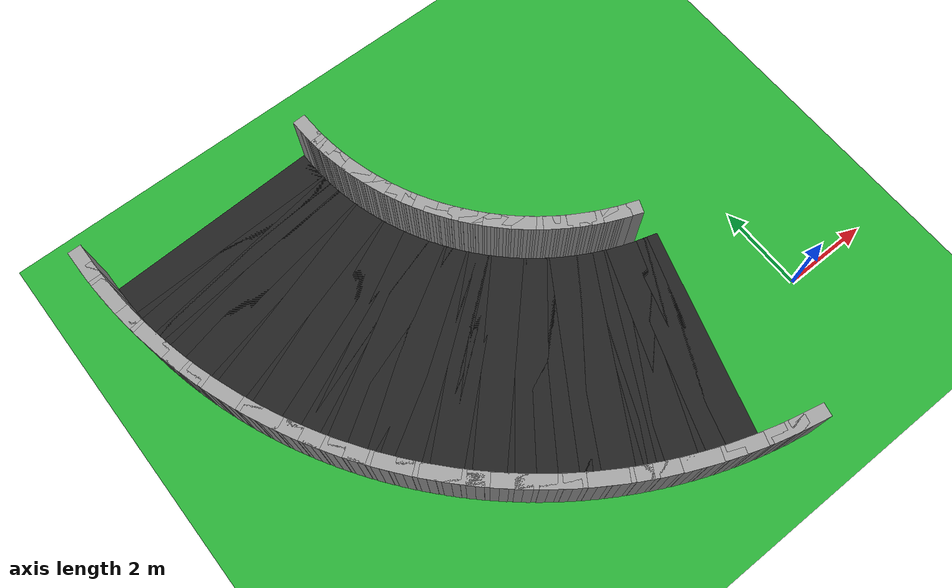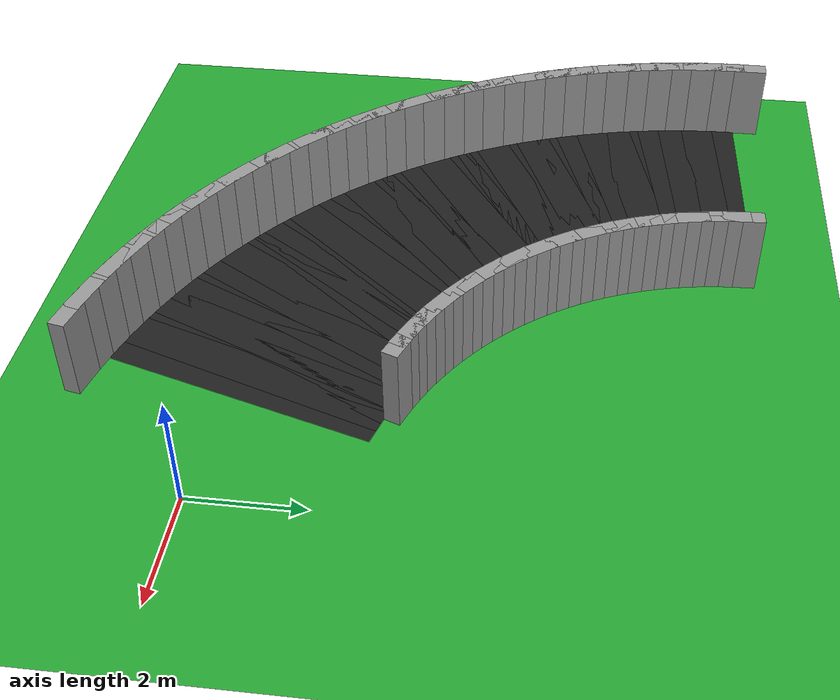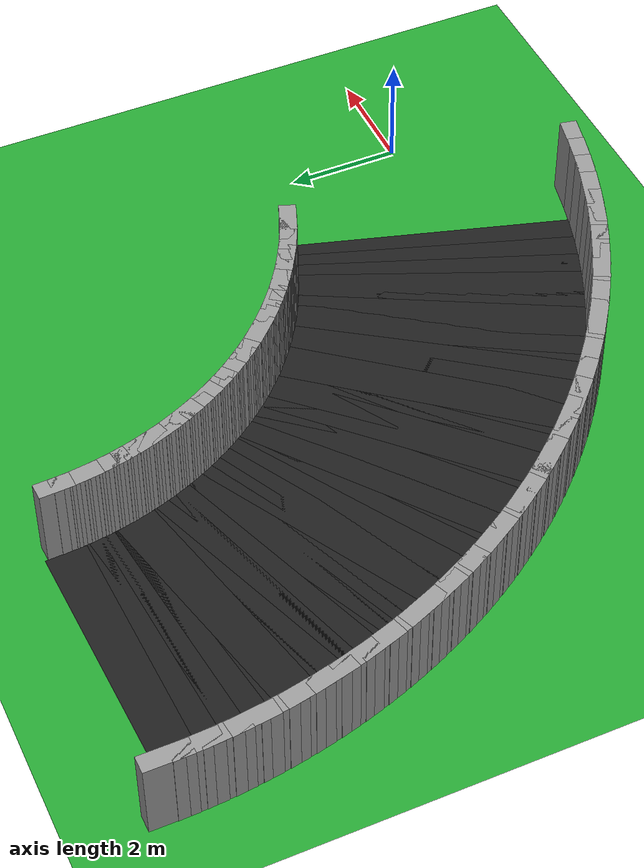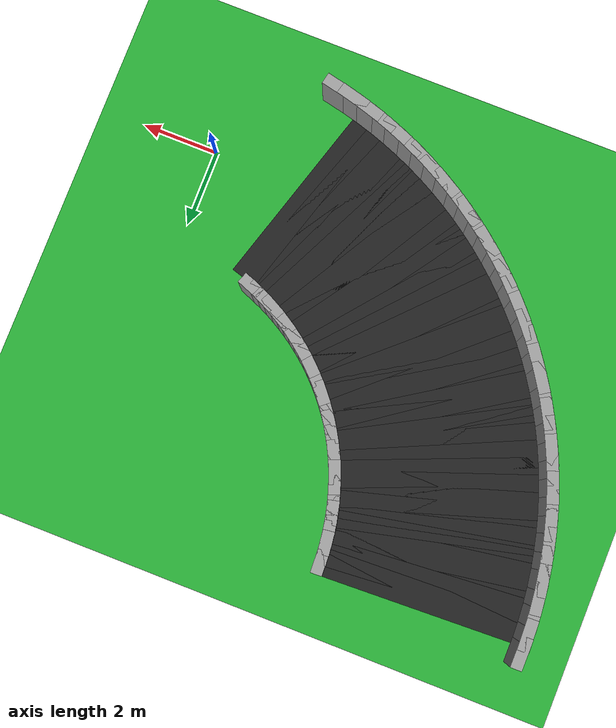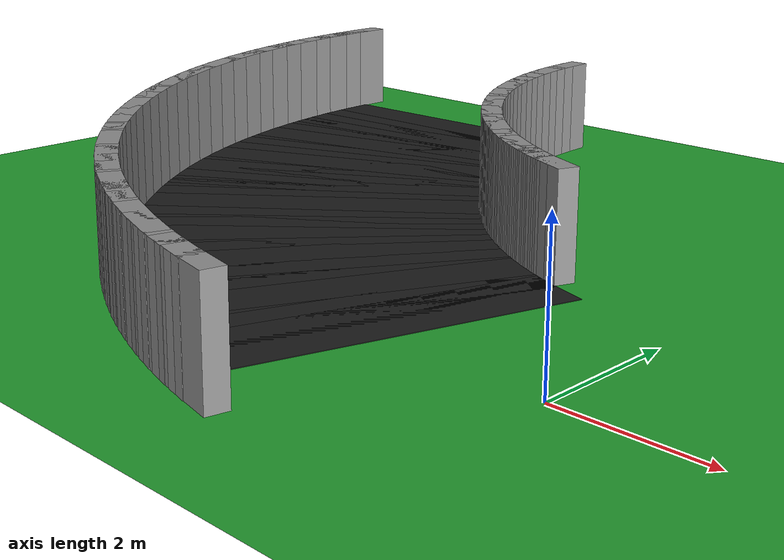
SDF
<sdf version="1.6">
 <world name="loop_stadium">
  <include><uri>model://sun</uri></include>
  <model name="ground_plane">
   <static>true</static>
   <link name="link">
    <collision name="collision">
     <surface><friction><ode><mu>100</mu><mu2>50</mu2></ode></friction></surface>
     <geometry><plane><normal>0 0 1</normal><size>120 120</size></plane></geometry>
    </collision>
    <visual name="visual">
     <geometry><plane><normal>0 0 1</normal><size>120 120</size></plane></geometry>
     <material>
      <script><uri>file://media/materials/scripts/gazebo.material</uri><name>Gazebo/Green</name></script>
     </material>
    </visual>
   </link>
  </model>
  <model name="curbR_259">
   <static>true</static>
   <pose>-11.648 9.001 0.750 0 0 -1.57080</pose>
   <link name="link">
    <collision name="collision"><geometry><box><size>0.812 0.300 1.500</size></box></geometry></collision>
    <visual name="visual">
     <geometry><box><size>0.812 0.300 1.500</size></box></geometry>
     <material>
      <script><uri>file://media/materials/scripts/gazebo.material</uri><name>Gazebo/Grey</name></script>
     </material>
    </visual>
   </link>
  </model>
  <model name="asphalt_260">
   <static>true</static>
   <pose>-8.992 8.652 0.005 0 0 -1.53201</pose>
   <link name="link">
    <visual name="visual">
     <geometry><box><size>0.709 5.000 0.010</size></box></geometry>
     <material>
      <script><uri>file://media/materials/scripts/gazebo.material</uri><name>Gazebo/Black</name></script>
     </material>
    </visual>
   </link>
  </model>
  <model name="curbL_260">
   <static>true</static>
   <pose>-6.345 8.754 0.750 0 0 -1.53201</pose>
   <link name="link">
    <collision name="collision"><geometry><box><size>0.606 0.300 1.500</size></box></geometry></collision>
    <visual name="visual">
     <geometry><box><size>0.606 0.300 1.500</size></box></geometry>
     <material>
      <script><uri>file://media/materials/scripts/gazebo.material</uri><name>Gazebo/Grey</name></script>
     </material>
    </visual>
   </link>
  </model>
  <model name="curbR_260">
   <static>true</static>
   <pose>-11.640 8.549 0.750 0 0 -1.53201</pose>
   <link name="link">
    <collision name="collision"><geometry><box><size>0.812 0.300 1.500</size></box></geometry></collision>
    <visual name="visual">
     <geometry><box><size>0.812 0.300 1.500</size></box></geometry>
     <material>
      <script><uri>file://media/materials/scripts/gazebo.material</uri><name>Gazebo/Grey</name></script>
     </material>
    </visual>
   </link>
  </model>
  <model name="asphalt_261">
   <static>true</static>
   <pose>-8.972 8.303 0.005 0 0 -1.49323</pose>
   <link name="link">
    <visual name="visual">
     <geometry><box><size>0.709 5.000 0.010</size></box></geometry>
     <material>
      <script><uri>file://media/materials/scripts/gazebo.material</uri><name>Gazebo/Black</name></script>
     </material>
    </visual>
   </link>
  </model>
  <model name="curbL_261">
   <static>true</static>
   <pose>-6.330 8.509 0.750 0 0 -1.49323</pose>
   <link name="link">
    <collision name="collision"><geometry><box><size>0.606 0.300 1.500</size></box></geometry></collision>
    <visual name="visual">
     <geometry><box><size>0.606 0.300 1.500</size></box></geometry>
     <material>
      <script><uri>file://media/materials/scripts/gazebo.material</uri><name>Gazebo/Grey</name></script>
     </material>
    </visual>
   </link>
  </model>
  <model name="curbR_261">
   <static>true</static>
   <pose>-11.613 8.098 0.750 0 0 -1.49323</pose>
   <link name="link">
    <collision name="collision"><geometry><box><size>0.812 0.300 1.500</size></box></geometry></collision>
    <visual name="visual">
     <geometry><box><size>0.812 0.300 1.500</size></box></geometry>
     <material>
      <script><uri>file://media/materials/scripts/gazebo.material</uri><name>Gazebo/Grey</name></script>
     </material>
    </visual>
   </link>
  </model>
  <model name="asphalt_262">
   <static>true</static>
   <pose>-8.938 7.956 0.005 0 0 -1.45444</pose>
   <link name="link">
    <visual name="visual">
     <geometry><box><size>0.709 5.000 0.010</size></box></geometry>
     <material>
      <script><uri>file://media/materials/scripts/gazebo.material</uri><name>Gazebo/Black</name></script>
     </material>
    </visual>
   </link>
  </model>
  <model name="curbL_262">
   <static>true</static>
   <pose>-6.306 8.263 0.750 0 0 -1.45444</pose>
   <link name="link">
    <collision name="collision"><geometry><box><size>0.606 0.300 1.500</size></box></geometry></collision>
    <visual name="visual">
     <geometry><box><size>0.606 0.300 1.500</size></box></geometry>
     <material>
      <script><uri>file://media/materials/scripts/gazebo.material</uri><name>Gazebo/Grey</name></script>
     </material>
    </visual>
   </link>
  </model>
  <model name="curbR_262">
   <static>true</static>
   <pose>-11.570 7.648 0.750 0 0 -1.45444</pose>
   <link name="link">
    <collision name="collision"><geometry><box><size>0.812 0.300 1.500</size></box></geometry></collision>
    <visual name="visual">
     <geometry><box><size>0.812 0.300 1.500</size></box></geometry>
     <material>
      <script><uri>file://media/materials/scripts/gazebo.material</uri><name>Gazebo/Grey</name></script>
     </material>
    </visual>
   </link>
  </model>
  <model name="asphalt_263">
   <static>true</static>
   <pose>-8.891 7.610 0.005 0 0 -1.41566</pose>
   <link name="link">
    <visual name="visual">
     <geometry><box><size>0.709 5.000 0.010</size></box></geometry>
     <material>
      <script><uri>file://media/materials/scripts/gazebo.material</uri><name>Gazebo/Black</name></script>
     </material>
    </visual>
   </link>
  </model>
  <model name="curbL_263">
   <static>true</static>
   <pose>-6.273 8.019 0.750 0 0 -1.41566</pose>
   <link name="link">
    <collision name="collision"><geometry><box><size>0.606 0.300 1.500</size></box></geometry></collision>
    <visual name="visual">
     <geometry><box><size>0.606 0.300 1.500</size></box></geometry>
     <material>
      <script><uri>file://media/materials/scripts/gazebo.material</uri><name>Gazebo/Grey</name></script>
     </material>
    </visual>
   </link>
  </model>
  <model name="curbR_263">
   <static>true</static>
   <pose>-11.508 7.201 0.750 0 0 -1.41566</pose>
   <link name="link">
    <collision name="collision"><geometry><box><size>0.812 0.300 1.500</size></box></geometry></collision>
    <visual name="visual">
     <geometry><box><size>0.812 0.300 1.500</size></box></geometry>
     <material>
      <script><uri>file://media/materials/scripts/gazebo.material</uri><name>Gazebo/Grey</name></script>
     </material>
    </visual>
   </link>
  </model>
  <model name="asphalt_264">
   <static>true</static>
   <pose>-8.830 7.266 0.005 0 0 -1.37687</pose>
   <link name="link">
    <visual name="visual">
     <geometry><box><size>0.709 5.000 0.010</size></box></geometry>
     <material>
      <script><uri>file://media/materials/scripts/gazebo.material</uri><name>Gazebo/Black</name></script>
     </material>
    </visual>
   </link>
  </model>
  <model name="curbL_264">
   <static>true</static>
   <pose>-6.230 7.777 0.750 0 0 -1.37687</pose>
   <link name="link">
    <collision name="collision"><geometry><box><size>0.606 0.300 1.500</size></box></geometry></collision>
    <visual name="visual">
     <geometry><box><size>0.606 0.300 1.500</size></box></geometry>
     <material>
      <script><uri>file://media/materials/scripts/gazebo.material</uri><name>Gazebo/Grey</name></script>
     </material>
    </visual>
   </link>
  </model>
  <model name="curbR_264">
   <static>true</static>
   <pose>-11.430 6.756 0.750 0 0 -1.37687</pose>
   <link name="link">
    <collision name="collision"><geometry><box><size>0.812 0.300 1.500</size></box></geometry></collision>
    <visual name="visual">
     <geometry><box><size>0.812 0.300 1.500</size></box></geometry>
     <material>
      <script><uri>file://media/materials/scripts/gazebo.material</uri><name>Gazebo/Grey</name></script>
     </material>
    </visual>
   </link>
  </model>
  <model name="asphalt_265">
   <static>true</static>
   <pose>-8.756 6.925 0.005 0 0 -1.33809</pose>
   <link name="link">
    <visual name="visual">
     <geometry><box><size>0.709 5.000 0.010</size></box></geometry>
     <material>
      <script><uri>file://media/materials/scripts/gazebo.material</uri><name>Gazebo/Black</name></script>
     </material>
    </visual>
   </link>
  </model>
  <model name="curbL_265">
   <static>true</static>
   <pose>-6.178 7.536 0.750 0 0 -1.33809</pose>
   <link name="link">
    <collision name="collision"><geometry><box><size>0.606 0.300 1.500</size></box></geometry></collision>
    <visual name="visual">
     <geometry><box><size>0.606 0.300 1.500</size></box></geometry>
     <material>
      <script><uri>file://media/materials/scripts/gazebo.material</uri><name>Gazebo/Grey</name></script>
     </material>
    </visual>
   </link>
  </model>
  <model name="curbR_265">
   <static>true</static>
   <pose>-11.334 6.314 0.750 0 0 -1.33809</pose>
   <link name="link">
    <collision name="collision"><geometry><box><size>0.812 0.300 1.500</size></box></geometry></collision>
    <visual name="visual">
     <geometry><box><size>0.812 0.300 1.500</size></box></geometry>
     <material>
      <script><uri>file://media/materials/scripts/gazebo.material</uri><name>Gazebo/Grey</name></script>
     </material>
    </visual>
   </link>
  </model>
  <model name="asphalt_266">
   <static>true</static>
   <pose>-8.669 6.587 0.005 0 0 -1.29930</pose>
   <link name="link">
    <visual name="visual">
     <geometry><box><size>0.709 5.000 0.010</size></box></geometry>
     <material>
      <script><uri>file://media/materials/scripts/gazebo.material</uri><name>Gazebo/Black</name></script>
     </material>
    </visual>
   </link>
  </model>
  <model name="curbL_266">
   <static>true</static>
   <pose>-6.117 7.298 0.750 0 0 -1.29930</pose>
   <link name="link">
    <collision name="collision"><geometry><box><size>0.606 0.300 1.500</size></box></geometry></collision>
    <visual name="visual">
     <geometry><box><size>0.606 0.300 1.500</size></box></geometry>
     <material>
      <script><uri>file://media/materials/scripts/gazebo.material</uri><name>Gazebo/Grey</name></script>
     </material>
    </visual>
   </link>
  </model>
  <model name="curbR_266">
   <static>true</static>
   <pose>-11.222 5.877 0.750 0 0 -1.29930</pose>
   <link name="link">
    <collision name="collision"><geometry><box><size>0.812 0.300 1.500</size></box></geometry></collision>
    <visual name="visual">
     <geometry><box><size>0.812 0.300 1.500</size></box></geometry>
     <material>
      <script><uri>file://media/materials/scripts/gazebo.material</uri><name>Gazebo/Grey</name></script>
     </material>
    </visual>
   </link>
  </model>
  <model name="asphalt_267">
   <static>true</static>
   <pose>-8.569 6.253 0.005 0 0 -1.26052</pose>
   <link name="link">
    <visual name="visual">
     <geometry><box><size>0.709 5.000 0.010</size></box></geometry>
     <material>
      <script><uri>file://media/materials/scripts/gazebo.material</uri><name>Gazebo/Black</name></script>
     </material>
    </visual>
   </link>
  </model>
  <model name="curbL_267">
   <static>true</static>
   <pose>-6.046 7.062 0.750 0 0 -1.26052</pose>
   <link name="link">
    <collision name="collision"><geometry><box><size>0.606 0.300 1.500</size></box></geometry></collision>
    <visual name="visual">
     <geometry><box><size>0.606 0.300 1.500</size></box></geometry>
     <material>
      <script><uri>file://media/materials/scripts/gazebo.material</uri><name>Gazebo/Grey</name></script>
     </material>
    </visual>
   </link>
  </model>
  <model name="curbR_267">
   <static>true</static>
   <pose>-11.092 5.444 0.750 0 0 -1.26052</pose>
   <link name="link">
    <collision name="collision"><geometry><box><size>0.812 0.300 1.500</size></box></geometry></collision>
    <visual name="visual">
     <geometry><box><size>0.812 0.300 1.500</size></box></geometry>
     <material>
      <script><uri>file://media/materials/scripts/gazebo.material</uri><name>Gazebo/Grey</name></script>
     </material>
    </visual>
   </link>
  </model>
  <model name="asphalt_268">
   <static>true</static>
   <pose>-8.456 5.923 0.005 0 0 -1.22173</pose>
   <link name="link">
    <visual name="visual">
     <geometry><box><size>0.709 5.000 0.010</size></box></geometry>
     <material>
      <script><uri>file://media/materials/scripts/gazebo.material</uri><name>Gazebo/Black</name></script>
     </material>
    </visual>
   </link>
  </model>
  <model name="curbL_268">
   <static>true</static>
   <pose>-5.966 6.829 0.750 0 0 -1.22173</pose>
   <link name="link">
    <collision name="collision"><geometry><box><size>0.606 0.300 1.500</size></box></geometry></collision>
    <visual name="visual">
     <geometry><box><size>0.606 0.300 1.500</size></box></geometry>
     <material>
      <script><uri>file://media/materials/scripts/gazebo.material</uri><name>Gazebo/Grey</name></script>
     </material>
    </visual>
   </link>
  </model>
  <model name="curbR_268">
   <static>true</static>
   <pose>-10.946 5.017 0.750 0 0 -1.22173</pose>
   <link name="link">
    <collision name="collision"><geometry><box><size>0.812 0.300 1.500</size></box></geometry></collision>
    <visual name="visual">
     <geometry><box><size>0.812 0.300 1.500</size></box></geometry>
     <material>
      <script><uri>file://media/materials/scripts/gazebo.material</uri><name>Gazebo/Grey</name></script>
     </material>
    </visual>
   </link>
  </model>
  <model name="asphalt_269">
   <static>true</static>
   <pose>-8.330 5.597 0.005 0 0 -1.18295</pose>
   <link name="link">
    <visual name="visual">
     <geometry><box><size>0.709 5.000 0.010</size></box></geometry>
     <material>
      <script><uri>file://media/materials/scripts/gazebo.material</uri><name>Gazebo/Black</name></script>
     </material>
    </visual>
   </link>
  </model>
  <model name="curbL_269">
   <static>true</static>
   <pose>-5.878 6.599 0.750 0 0 -1.18295</pose>
   <link name="link">
    <collision name="collision"><geometry><box><size>0.606 0.300 1.500</size></box></geometry></collision>
    <visual name="visual">
     <geometry><box><size>0.606 0.300 1.500</size></box></geometry>
     <material>
      <script><uri>file://media/materials/scripts/gazebo.material</uri><name>Gazebo/Grey</name></script>
     </material>
    </visual>
   </link>
  </model>
  <model name="curbR_269">
   <static>true</static>
   <pose>-10.783 4.595 0.750 0 0 -1.18295</pose>
   <link name="link">
    <collision name="collision"><geometry><box><size>0.812 0.300 1.500</size></box></geometry></collision>
    <visual name="visual">
     <geometry><box><size>0.812 0.300 1.500</size></box></geometry>
     <material>
      <script><uri>file://media/materials/scripts/gazebo.material</uri><name>Gazebo/Grey</name></script>
     </material>
    </visual>
   </link>
  </model>
  <model name="asphalt_270">
   <static>true</static>
   <pose>-8.192 5.277 0.005 0 0 -1.14416</pose>
   <link name="link">
    <visual name="visual">
     <geometry><box><size>0.709 5.000 0.010</size></box></geometry>
     <material>
      <script><uri>file://media/materials/scripts/gazebo.material</uri><name>Gazebo/Black</name></script>
     </material>
    </visual>
   </link>
  </model>
  <model name="curbL_270">
   <static>true</static>
   <pose>-5.780 6.373 0.750 0 0 -1.14416</pose>
   <link name="link">
    <collision name="collision"><geometry><box><size>0.606 0.300 1.500</size></box></geometry></collision>
    <visual name="visual">
     <geometry><box><size>0.606 0.300 1.500</size></box></geometry>
     <material>
      <script><uri>file://media/materials/scripts/gazebo.material</uri><name>Gazebo/Grey</name></script>
     </material>
    </visual>
   </link>
  </model>
  <model name="curbR_270">
   <static>true</static>
   <pose>-10.604 4.180 0.750 0 0 -1.14416</pose>
   <link name="link">
    <collision name="collision"><geometry><box><size>0.812 0.300 1.500</size></box></geometry></collision>
    <visual name="visual">
     <geometry><box><size>0.812 0.300 1.500</size></box></geometry>
     <material>
      <script><uri>file://media/materials/scripts/gazebo.material</uri><name>Gazebo/Grey</name></script>
     </material>
    </visual>
   </link>
  </model>
  <model name="asphalt_271">
   <static>true</static>
   <pose>-8.042 4.962 0.005 0 0 -1.10538</pose>
   <link name="link">
    <visual name="visual">
     <geometry><box><size>0.709 5.000 0.010</size></box></geometry>
     <material>
      <script><uri>file://media/materials/scripts/gazebo.material</uri><name>Gazebo/Black</name></script>
     </material>
    </visual>
   </link>
  </model>
  <model name="curbL_271">
   <static>true</static>
   <pose>-5.674 6.151 0.750 0 0 -1.10538</pose>
   <link name="link">
    <collision name="collision"><geometry><box><size>0.606 0.300 1.500</size></box></geometry></collision>
    <visual name="visual">
     <geometry><box><size>0.606 0.300 1.500</size></box></geometry>
     <material>
      <script><uri>file://media/materials/scripts/gazebo.material</uri><name>Gazebo/Grey</name></script>
     </material>
    </visual>
   </link>
  </model>
  <model name="curbR_271">
   <static>true</static>
   <pose>-10.409 3.773 0.750 0 0 -1.10538</pose>
   <link name="link">
    <collision name="collision"><geometry><box><size>0.812 0.300 1.500</size></box></geometry></collision>
    <visual name="visual">
     <geometry><box><size>0.812 0.300 1.500</size></box></geometry>
     <material>
      <script><uri>file://media/materials/scripts/gazebo.material</uri><name>Gazebo/Grey</name></script>
     </material>
    </visual>
   </link>
  </model>
  <model name="asphalt_272">
   <static>true</static>
   <pose>-7.879 4.653 0.005 0 0 -1.06659</pose>
   <link name="link">
    <visual name="visual">
     <geometry><box><size>0.709 5.000 0.010</size></box></geometry>
     <material>
      <script><uri>file://media/materials/scripts/gazebo.material</uri><name>Gazebo/Black</name></script>
     </material>
    </visual>
   </link>
  </model>
  <model name="curbL_272">
   <static>true</static>
   <pose>-5.559 5.933 0.750 0 0 -1.06659</pose>
   <link name="link">
    <collision name="collision"><geometry><box><size>0.606 0.300 1.500</size></box></geometry></collision>
    <visual name="visual">
     <geometry><box><size>0.606 0.300 1.500</size></box></geometry>
     <material>
      <script><uri>file://media/materials/scripts/gazebo.material</uri><name>Gazebo/Grey</name></script>
     </material>
    </visual>
   </link>
  </model>
  <model name="curbR_272">
   <static>true</static>
   <pose>-10.199 3.373 0.750 0 0 -1.06659</pose>
   <link name="link">
    <collision name="collision"><geometry><box><size>0.812 0.300 1.500</size></box></geometry></collision>
    <visual name="visual">
     <geometry><box><size>0.812 0.300 1.500</size></box></geometry>
     <material>
      <script><uri>file://media/materials/scripts/gazebo.material</uri><name>Gazebo/Grey</name></script>
     </material>
    </visual>
   </link>
  </model>
  <model name="asphalt_273">
   <static>true</static>
   <pose>-7.705 4.351 0.005 0 0 -1.02781</pose>
   <link name="link">
    <visual name="visual">
     <geometry><box><size>0.709 5.000 0.010</size></box></geometry>
     <material>
      <script><uri>file://media/materials/scripts/gazebo.material</uri><name>Gazebo/Black</name></script>
     </material>
    </visual>
   </link>
  </model>
  <model name="curbL_273">
   <static>true</static>
   <pose>-5.436 5.720 0.750 0 0 -1.02781</pose>
   <link name="link">
    <collision name="collision"><geometry><box><size>0.606 0.300 1.500</size></box></geometry></collision>
    <visual name="visual">
     <geometry><box><size>0.606 0.300 1.500</size></box></geometry>
     <material>
      <script><uri>file://media/materials/scripts/gazebo.material</uri><name>Gazebo/Grey</name></script>
     </material>
    </visual>
   </link>
  </model>
  <model name="curbR_273">
   <static>true</static>
   <pose>-9.973 2.982 0.750 0 0 -1.02781</pose>
   <link name="link">
    <collision name="collision"><geometry><box><size>0.812 0.300 1.500</size></box></geometry></collision>
    <visual name="visual">
     <geometry><box><size>0.812 0.300 1.500</size></box></geometry>
     <material>
      <script><uri>file://media/materials/scripts/gazebo.material</uri><name>Gazebo/Grey</name></script>
     </material>
    </visual>
   </link>
  </model>
  <model name="asphalt_274">
   <static>true</static>
   <pose>-7.518 4.056 0.005 0 0 -0.98902</pose>
   <link name="link">
    <visual name="visual">
     <geometry><box><size>0.709 5.000 0.010</size></box></geometry>
     <material>
      <script><uri>file://media/materials/scripts/gazebo.material</uri><name>Gazebo/Black</name></script>
     </material>
    </visual>
   </link>
  </model>
  <model name="curbL_274">
   <static>true</static>
   <pose>-5.305 5.512 0.750 0 0 -0.98902</pose>
   <link name="link">
    <collision name="collision"><geometry><box><size>0.606 0.300 1.500</size></box></geometry></collision>
    <visual name="visual">
     <geometry><box><size>0.606 0.300 1.500</size></box></geometry>
     <material>
      <script><uri>file://media/materials/scripts/gazebo.material</uri><name>Gazebo/Grey</name></script>
     </material>
    </visual>
   </link>
  </model>
  <model name="curbR_274">
   <static>true</static>
   <pose>-9.732 2.600 0.750 0 0 -0.98902</pose>
   <link name="link">
    <collision name="collision"><geometry><box><size>0.812 0.300 1.500</size></box></geometry></collision>
    <visual name="visual">
     <geometry><box><size>0.812 0.300 1.500</size></box></geometry>
     <material>
      <script><uri>file://media/materials/scripts/gazebo.material</uri><name>Gazebo/Grey</name></script>
     </material>
    </visual>
   </link>
  </model>
  <model name="asphalt_275">
   <static>true</static>
   <pose>-7.321 3.768 0.005 0 0 -0.95023</pose>
   <link name="link">
    <visual name="visual">
     <geometry><box><size>0.709 5.000 0.010</size></box></geometry>
     <material>
      <script><uri>file://media/materials/scripts/gazebo.material</uri><name>Gazebo/Black</name></script>
     </material>
    </visual>
   </link>
  </model>
  <model name="curbL_275">
   <static>true</static>
   <pose>-5.166 5.308 0.750 0 0 -0.95023</pose>
   <link name="link">
    <collision name="collision"><geometry><box><size>0.606 0.300 1.500</size></box></geometry></collision>
    <visual name="visual">
     <geometry><box><size>0.606 0.300 1.500</size></box></geometry>
     <material>
      <script><uri>file://media/materials/scripts/gazebo.material</uri><name>Gazebo/Grey</name></script>
     </material>
    </visual>
   </link>
  </model>
  <model name="curbR_275">
   <static>true</static>
   <pose>-9.477 2.227 0.750 0 0 -0.95023</pose>
   <link name="link">
    <collision name="collision"><geometry><box><size>0.812 0.300 1.500</size></box></geometry></collision>
    <visual name="visual">
     <geometry><box><size>0.812 0.300 1.500</size></box></geometry>
     <material>
      <script><uri>file://media/materials/scripts/gazebo.material</uri><name>Gazebo/Grey</name></script>
     </material>
    </visual>
   </link>
  </model>
  <model name="asphalt_276">
   <static>true</static>
   <pose>-7.113 3.488 0.005 0 0 -0.91145</pose>
   <link name="link">
    <visual name="visual">
     <geometry><box><size>0.709 5.000 0.010</size></box></geometry>
     <material>
      <script><uri>file://media/materials/scripts/gazebo.material</uri><name>Gazebo/Black</name></script>
     </material>
    </visual>
   </link>
  </model>
  <model name="curbL_276">
   <static>true</static>
   <pose>-5.018 5.111 0.750 0 0 -0.91145</pose>
   <link name="link">
    <collision name="collision"><geometry><box><size>0.606 0.300 1.500</size></box></geometry></collision>
    <visual name="visual">
     <geometry><box><size>0.606 0.300 1.500</size></box></geometry>
     <material>
      <script><uri>file://media/materials/scripts/gazebo.material</uri><name>Gazebo/Grey</name></script>
     </material>
    </visual>
   </link>
  </model>
  <model name="curbR_276">
   <static>true</static>
   <pose>-9.207 1.865 0.750 0 0 -0.91145</pose>
   <link name="link">
    <collision name="collision"><geometry><box><size>0.812 0.300 1.500</size></box></geometry></collision>
    <visual name="visual">
     <geometry><box><size>0.812 0.300 1.500</size></box></geometry>
     <material>
      <script><uri>file://media/materials/scripts/gazebo.material</uri><name>Gazebo/Grey</name></script>
     </material>
    </visual>
   </link>
  </model>
  <model name="asphalt_277">
   <static>true</static>
   <pose>-6.894 3.216 0.005 0 0 -0.87266</pose>
   <link name="link">
    <visual name="visual">
     <geometry><box><size>0.709 5.000 0.010</size></box></geometry>
     <material>
      <script><uri>file://media/materials/scripts/gazebo.material</uri><name>Gazebo/Black</name></script>
     </material>
    </visual>
   </link>
  </model>
  <model name="curbL_277">
   <static>true</static>
   <pose>-4.864 4.919 0.750 0 0 -0.87266</pose>
   <link name="link">
    <collision name="collision"><geometry><box><size>0.606 0.300 1.500</size></box></geometry></collision>
    <visual name="visual">
     <geometry><box><size>0.606 0.300 1.500</size></box></geometry>
     <material>
      <script><uri>file://media/materials/scripts/gazebo.material</uri><name>Gazebo/Grey</name></script>
     </material>
    </visual>
   </link>
  </model>
  <model name="curbR_277">
   <static>true</static>
   <pose>-8.923 1.513 0.750 0 0 -0.87266</pose>
   <link name="link">
    <collision name="collision"><geometry><box><size>0.812 0.300 1.500</size></box></geometry></collision>
    <visual name="visual">
     <geometry><box><size>0.812 0.300 1.500</size></box></geometry>
     <material>
      <script><uri>file://media/materials/scripts/gazebo.material</uri><name>Gazebo/Grey</name></script>
     </material>
    </visual>
   </link>
  </model>
  <model name="asphalt_278">
   <static>true</static>
   <pose>-6.664 2.953 0.005 0 0 -0.83388</pose>
   <link name="link">
    <visual name="visual">
     <geometry><box><size>0.709 5.000 0.010</size></box></geometry>
     <material>
      <script><uri>file://media/materials/scripts/gazebo.material</uri><name>Gazebo/Black</name></script>
     </material>
    </visual>
   </link>
  </model>
  <model name="curbL_278">
   <static>true</static>
   <pose>-4.702 4.734 0.750 0 0 -0.83388</pose>
   <link name="link">
    <collision name="collision"><geometry><box><size>0.606 0.300 1.500</size></box></geometry></collision>
    <visual name="visual">
     <geometry><box><size>0.606 0.300 1.500</size></box></geometry>
     <material>
      <script><uri>file://media/materials/scripts/gazebo.material</uri><name>Gazebo/Grey</name></script>
     </material>
    </visual>
   </link>
  </model>
  <model name="curbR_278">
   <static>true</static>
   <pose>-8.626 1.173 0.750 0 0 -0.83388</pose>
   <link name="link">
    <collision name="collision"><geometry><box><size>0.812 0.300 1.500</size></box></geometry></collision>
    <visual name="visual">
     <geometry><box><size>0.812 0.300 1.500</size></box></geometry>
     <material>
      <script><uri>file://media/materials/scripts/gazebo.material</uri><name>Gazebo/Grey</name></script>
     </material>
    </visual>
   </link>
  </model>
  <model name="asphalt_279">
   <static>true</static>
   <pose>-6.425 2.699 0.005 0 0 -0.79509</pose>
   <link name="link">
    <visual name="visual">
     <geometry><box><size>0.709 5.000 0.010</size></box></geometry>
     <material>
      <script><uri>file://media/materials/scripts/gazebo.material</uri><name>Gazebo/Black</name></script>
     </material>
    </visual>
   </link>
  </model>
  <model name="curbL_279">
   <static>true</static>
   <pose>-4.533 4.555 0.750 0 0 -0.79509</pose>
   <link name="link">
    <collision name="collision"><geometry><box><size>0.606 0.300 1.500</size></box></geometry></collision>
    <visual name="visual">
     <geometry><box><size>0.606 0.300 1.500</size></box></geometry>
     <material>
      <script><uri>file://media/materials/scripts/gazebo.material</uri><name>Gazebo/Grey</name></script>
     </material>
    </visual>
   </link>
  </model>
  <model name="curbR_279">
   <static>true</static>
   <pose>-8.316 0.844 0.750 0 0 -0.79509</pose>
   <link name="link">
    <collision name="collision"><geometry><box><size>0.812 0.300 1.500</size></box></geometry></collision>
    <visual name="visual">
     <geometry><box><size>0.812 0.300 1.500</size></box></geometry>
     <material>
      <script><uri>file://media/materials/scripts/gazebo.material</uri><name>Gazebo/Grey</name></script>
     </material>
    </visual>
   </link>
  </model>
  <model name="asphalt_280">
   <static>true</static>
   <pose>-6.175 2.455 0.005 0 0 -0.75631</pose>
   <link name="link">
    <visual name="visual">
     <geometry><box><size>0.709 5.000 0.010</size></box></geometry>
     <material>
      <script><uri>file://media/materials/scripts/gazebo.material</uri><name>Gazebo/Black</name></script>
     </material>
    </visual>
   </link>
  </model>
  <model name="curbL_280">
   <static>true</static>
   <pose>-4.357 4.382 0.750 0 0 -0.75631</pose>
   <link name="link">
    <collision name="collision"><geometry><box><size>0.606 0.300 1.500</size></box></geometry></collision>
    <visual name="visual">
     <geometry><box><size>0.606 0.300 1.500</size></box></geometry>
     <material>
      <script><uri>file://media/materials/scripts/gazebo.material</uri><name>Gazebo/Grey</name></script>
     </material>
    </visual>
   </link>
  </model>
  <model name="curbR_280">
   <static>true</static>
   <pose>-7.994 0.528 0.750 0 0 -0.75631</pose>
   <link name="link">
    <collision name="collision"><geometry><box><size>0.812 0.300 1.500</size></box></geometry></collision>
    <visual name="visual">
     <geometry><box><size>0.812 0.300 1.500</size></box></geometry>
     <material>
      <script><uri>file://media/materials/scripts/gazebo.material</uri><name>Gazebo/Grey</name></script>
     </material>
    </visual>
   </link>
  </model>
  <model name="asphalt_281">
   <static>true</static>
   <pose>-5.917 2.220 0.005 0 0 -0.71752</pose>
   <link name="link">
    <visual name="visual">
     <geometry><box><size>0.709 5.000 0.010</size></box></geometry>
     <material>
      <script><uri>file://media/materials/scripts/gazebo.material</uri><name>Gazebo/Black</name></script>
     </material>
    </visual>
   </link>
  </model>
  <model name="curbL_281">
   <static>true</static>
   <pose>-4.175 4.217 0.750 0 0 -0.71752</pose>
   <link name="link">
    <collision name="collision"><geometry><box><size>0.606 0.300 1.500</size></box></geometry></collision>
    <visual name="visual">
     <geometry><box><size>0.606 0.300 1.500</size></box></geometry>
     <material>
      <script><uri>file://media/materials/scripts/gazebo.material</uri><name>Gazebo/Grey</name></script>
     </material>
    </visual>
   </link>
  </model>
  <model name="curbR_281">
   <static>true</static>
   <pose>-7.659 0.224 0.750 0 0 -0.71752</pose>
   <link name="link">
    <collision name="collision"><geometry><box><size>0.812 0.300 1.500</size></box></geometry></collision>
    <visual name="visual">
     <geometry><box><size>0.812 0.300 1.500</size></box></geometry>
     <material>
      <script><uri>file://media/materials/scripts/gazebo.material</uri><name>Gazebo/Grey</name></script>
     </material>
    </visual>
   </link>
  </model>
  <model name="asphalt_282">
   <static>true</static>
   <pose>-5.650 1.996 0.005 0 0 -0.67874</pose>
   <link name="link">
    <visual name="visual">
     <geometry><box><size>0.709 5.000 0.010</size></box></geometry>
     <material>
      <script><uri>file://media/materials/scripts/gazebo.material</uri><name>Gazebo/Black</name></script>
     </material>
    </visual>
   </link>
  </model>
  <model name="curbL_282">
   <static>true</static>
   <pose>-3.986 4.058 0.750 0 0 -0.67874</pose>
   <link name="link">
    <collision name="collision"><geometry><box><size>0.606 0.300 1.500</size></box></geometry></collision>
    <visual name="visual">
     <geometry><box><size>0.606 0.300 1.500</size></box></geometry>
     <material>
      <script><uri>file://media/materials/scripts/gazebo.material</uri><name>Gazebo/Grey</name></script>
     </material>
    </visual>
   </link>
  </model>
  <model name="curbR_282">
   <static>true</static>
   <pose>-7.313 -0.066 0.750 0 0 -0.67874</pose>
   <link name="link">
    <collision name="collision"><geometry><box><size>0.812 0.300 1.500</size></box></geometry></collision>
    <visual name="visual">
     <geometry><box><size>0.812 0.300 1.500</size></box></geometry>
     <material>
      <script><uri>file://media/materials/scripts/gazebo.material</uri><name>Gazebo/Grey</name></script>
     </material>
    </visual>
   </link>
  </model>
  <model name="asphalt_283">
   <static>true</static>
   <pose>-5.374 1.782 0.005 0 0 -0.63995</pose>
   <link name="link">
    <visual name="visual">
     <geometry><box><size>0.709 5.000 0.010</size></box></geometry>
     <material>
      <script><uri>file://media/materials/scripts/gazebo.material</uri><name>Gazebo/Black</name></script>
     </material>
    </visual>
   </link>
  </model>
  <model name="curbL_283">
   <static>true</static>
   <pose>-3.792 3.908 0.750 0 0 -0.63995</pose>
   <link name="link">
    <collision name="collision"><geometry><box><size>0.606 0.300 1.500</size></box></geometry></collision>
    <visual name="visual">
     <geometry><box><size>0.606 0.300 1.500</size></box></geometry>
     <material>
      <script><uri>file://media/materials/scripts/gazebo.material</uri><name>Gazebo/Grey</name></script>
     </material>
    </visual>
   </link>
  </model>
  <model name="curbR_283">
   <static>true</static>
   <pose>-6.956 -0.343 0.750 0 0 -0.63995</pose>
   <link name="link">
    <collision name="collision"><geometry><box><size>0.812 0.300 1.500</size></box></geometry></collision>
    <visual name="visual">
     <geometry><box><size>0.812 0.300 1.500</size></box></geometry>
     <material>
      <script><uri>file://media/materials/scripts/gazebo.material</uri><name>Gazebo/Grey</name></script>
     </material>
    </visual>
   </link>
  </model>
  <model name="asphalt_284">
   <static>true</static>
   <pose>-5.090 1.579 0.005 0 0 -0.60117</pose>
   <link name="link">
    <visual name="visual">
     <geometry><box><size>0.709 5.000 0.010</size></box></geometry>
     <material>
      <script><uri>file://media/materials/scripts/gazebo.material</uri><name>Gazebo/Black</name></script>
     </material>
    </visual>
   </link>
  </model>
  <model name="curbL_284">
   <static>true</static>
   <pose>-3.591 3.764 0.750 0 0 -0.60117</pose>
   <link name="link">
    <collision name="collision"><geometry><box><size>0.606 0.300 1.500</size></box></geometry></collision>
    <visual name="visual">
     <geometry><box><size>0.606 0.300 1.500</size></box></geometry>
     <material>
      <script><uri>file://media/materials/scripts/gazebo.material</uri><name>Gazebo/Grey</name></script>
     </material>
    </visual>
   </link>
  </model>
  <model name="curbR_284">
   <static>true</static>
   <pose>-6.588 -0.606 0.750 0 0 -0.60117</pose>
   <link name="link">
    <collision name="collision"><geometry><box><size>0.812 0.300 1.500</size></box></geometry></collision>
    <visual name="visual">
     <geometry><box><size>0.812 0.300 1.500</size></box></geometry>
     <material>
      <script><uri>file://media/materials/scripts/gazebo.material</uri><name>Gazebo/Grey</name></script>
     </material>
    </visual>
   </link>
  </model>
  <model name="asphalt_285">
   <static>true</static>
   <pose>-4.798 1.388 0.005 0 0 -0.56238</pose>
   <link name="link">
    <visual name="visual">
     <geometry><box><size>0.709 5.000 0.010</size></box></geometry>
     <material>
      <script><uri>file://media/materials/scripts/gazebo.material</uri><name>Gazebo/Black</name></script>
     </material>
    </visual>
   </link>
  </model>
  <model name="curbL_285">
   <static>true</static>
   <pose>-3.386 3.629 0.750 0 0 -0.56238</pose>
   <link name="link">
    <collision name="collision"><geometry><box><size>0.606 0.300 1.500</size></box></geometry></collision>
    <visual name="visual">
     <geometry><box><size>0.606 0.300 1.500</size></box></geometry>
     <material>
      <script><uri>file://media/materials/scripts/gazebo.material</uri><name>Gazebo/Grey</name></script>
     </material>
    </visual>
   </link>
  </model>
  <model name="curbR_285">
   <static>true</static>
   <pose>-6.211 -0.854 0.750 0 0 -0.56238</pose>
   <link name="link">
    <collision name="collision"><geometry><box><size>0.812 0.300 1.500</size></box></geometry></collision>
    <visual name="visual">
     <geometry><box><size>0.812 0.300 1.500</size></box></geometry>
     <material>
      <script><uri>file://media/materials/scripts/gazebo.material</uri><name>Gazebo/Grey</name></script>
     </material>
    </visual>
   </link>
  </model>
  <model name="asphalt_286">
   <static>true</static>
   <pose>-4.499 1.207 0.005 0 0 -0.52360</pose>
   <link name="link">
    <visual name="visual">
     <geometry><box><size>0.709 5.000 0.010</size></box></geometry>
     <material>
      <script><uri>file://media/materials/scripts/gazebo.material</uri><name>Gazebo/Black</name></script>
     </material>
    </visual>
   </link>
  </model>
  <model name="curbL_286">
   <static>true</static>
   <pose>-3.175 3.502 0.750 0 0 -0.52360</pose>
   <link name="link">
    <collision name="collision"><geometry><box><size>0.606 0.300 1.500</size></box></geometry></collision>
    <visual name="visual">
     <geometry><box><size>0.606 0.300 1.500</size></box></geometry>
     <material>
      <script><uri>file://media/materials/scripts/gazebo.material</uri><name>Gazebo/Grey</name></script>
     </material>
    </visual>
   </link>
  </model>
  <model name="curbR_286">
   <static>true</static>
   <pose>-5.824 -1.087 0.750 0 0 -0.52360</pose>
   <link name="link">
    <collision name="collision"><geometry><box><size>0.812 0.300 1.500</size></box></geometry></collision>
    <visual name="visual">
     <geometry><box><size>0.812 0.300 1.500</size></box></geometry>
     <material>
      <script><uri>file://media/materials/scripts/gazebo.material</uri><name>Gazebo/Grey</name></script>
     </material>
    </visual>
   </link>
  </model>
  <model name="asphalt_287">
   <static>true</static>
   <pose>-4.194 1.039 0.005 0 0 -0.48481</pose>
   <link name="link">
    <visual name="visual">
     <geometry><box><size>0.709 5.000 0.010</size></box></geometry>
     <material>
      <script><uri>file://media/materials/scripts/gazebo.material</uri><name>Gazebo/Black</name></script>
     </material>
    </visual>
   </link>
  </model>
  <model name="curbL_287">
   <static>true</static>
   <pose>-2.959 3.383 0.750 0 0 -0.48481</pose>
   <link name="link">
    <collision name="collision"><geometry><box><size>0.606 0.300 1.500</size></box></geometry></collision>
    <visual name="visual">
     <geometry><box><size>0.606 0.300 1.500</size></box></geometry>
     <material>
      <script><uri>file://media/materials/scripts/gazebo.material</uri><name>Gazebo/Grey</name></script>
     </material>
    </visual>
   </link>
  </model>
  <model name="curbR_287">
   <static>true</static>
   <pose>-5.429 -1.305 0.750 0 0 -0.48481</pose>
   <link name="link">
    <collision name="collision"><geometry><box><size>0.812 0.300 1.500</size></box></geometry></collision>
    <visual name="visual">
     <geometry><box><size>0.812 0.300 1.500</size></box></geometry>
     <material>
      <script><uri>file://media/materials/scripts/gazebo.material</uri><name>Gazebo/Grey</name></script>
     </material>
    </visual>
   </link>
  </model>
  <model name="asphalt_288">
   <static>true</static>
   <pose>-3.882 0.882 0.005 0 0 -0.44603</pose>
   <link name="link">
    <visual name="visual">
     <geometry><box><size>0.709 5.000 0.010</size></box></geometry>
     <material>
      <script><uri>file://media/materials/scripts/gazebo.material</uri><name>Gazebo/Black</name></script>
     </material>
    </visual>
   </link>
  </model>
  <model name="curbL_288">
   <static>true</static>
   <pose>-2.739 3.272 0.750 0 0 -0.44603</pose>
   <link name="link">
    <collision name="collision"><geometry><box><size>0.606 0.300 1.500</size></box></geometry></collision>
    <visual name="visual">
     <geometry><box><size>0.606 0.300 1.500</size></box></geometry>
     <material>
      <script><uri>file://media/materials/scripts/gazebo.material</uri><name>Gazebo/Grey</name></script>
     </material>
    </visual>
   </link>
  </model>
  <model name="curbR_288">
   <static>true</static>
   <pose>-5.025 -1.508 0.750 0 0 -0.44603</pose>
   <link name="link">
    <collision name="collision"><geometry><box><size>0.812 0.300 1.500</size></box></geometry></collision>
    <visual name="visual">
     <geometry><box><size>0.812 0.300 1.500</size></box></geometry>
     <material>
      <script><uri>file://media/materials/scripts/gazebo.material</uri><name>Gazebo/Grey</name></script>
     </material>
    </visual>
   </link>
  </model>
  <model name="asphalt_289">
   <static>true</static>
   <pose>-3.564 0.738 0.005 0 0 -0.40724</pose>
   <link name="link">
    <visual name="visual">
     <geometry><box><size>0.709 5.000 0.010</size></box></geometry>
     <material>
      <script><uri>file://media/materials/scripts/gazebo.material</uri><name>Gazebo/Black</name></script>
     </material>
    </visual>
   </link>
  </model>
  <model name="curbL_289">
   <static>true</static>
   <pose>-2.515 3.170 0.750 0 0 -0.40724</pose>
   <link name="link">
    <collision name="collision"><geometry><box><size>0.606 0.300 1.500</size></box></geometry></collision>
    <visual name="visual">
     <geometry><box><size>0.606 0.300 1.500</size></box></geometry>
     <material>
      <script><uri>file://media/materials/scripts/gazebo.material</uri><name>Gazebo/Grey</name></script>
     </material>
    </visual>
   </link>
  </model>
  <model name="curbR_289">
   <static>true</static>
   <pose>-4.614 -1.695 0.750 0 0 -0.40724</pose>
   <link name="link">
    <collision name="collision"><geometry><box><size>0.812 0.300 1.500</size></box></geometry></collision>
    <visual name="visual">
     <geometry><box><size>0.812 0.300 1.500</size></box></geometry>
     <material>
      <script><uri>file://media/materials/scripts/gazebo.material</uri><name>Gazebo/Grey</name></script>
     </material>
    </visual>
   </link>
  </model>
  <model name="asphalt_290">
   <static>true</static>
   <pose>-3.241 0.606 0.005 0 0 -0.36846</pose>
   <link name="link">
    <visual name="visual">
     <geometry><box><size>0.709 5.000 0.010</size></box></geometry>
     <material>
      <script><uri>file://media/materials/scripts/gazebo.material</uri><name>Gazebo/Black</name></script>
     </material>
    </visual>
   </link>
  </model>
  <model name="curbL_290">
   <static>true</static>
   <pose>-2.287 3.077 0.750 0 0 -0.36846</pose>
   <link name="link">
    <collision name="collision"><geometry><box><size>0.606 0.300 1.500</size></box></geometry></collision>
    <visual name="visual">
     <geometry><box><size>0.606 0.300 1.500</size></box></geometry>
     <material>
      <script><uri>file://media/materials/scripts/gazebo.material</uri><name>Gazebo/Grey</name></script>
     </material>
    </visual>
   </link>
  </model>
  <model name="curbR_290">
   <static>true</static>
   <pose>-4.195 -1.866 0.750 0 0 -0.36846</pose>
   <link name="link">
    <collision name="collision"><geometry><box><size>0.812 0.300 1.500</size></box></geometry></collision>
    <visual name="visual">
     <geometry><box><size>0.812 0.300 1.500</size></box></geometry>
     <material>
      <script><uri>file://media/materials/scripts/gazebo.material</uri><name>Gazebo/Grey</name></script>
     </material>
    </visual>
   </link>
  </model>
  <model name="asphalt_291">
   <static>true</static>
   <pose>-2.913 0.486 0.005 0 0 -0.32967</pose>
   <link name="link">
    <visual name="visual">
     <geometry><box><size>0.709 5.000 0.010</size></box></geometry>
     <material>
      <script><uri>file://media/materials/scripts/gazebo.material</uri><name>Gazebo/Black</name></script>
     </material>
    </visual>
   </link>
  </model>
  <model name="curbR_291">
   <static>true</static>
   <pose>-3.771 -2.021 0.750 0 0 -0.32967</pose>
   <link name="link">
    <collision name="collision"><geometry><box><size>0.812 0.300 1.500</size></box></geometry></collision>
    <visual name="visual">
     <geometry><box><size>0.812 0.300 1.500</size></box></geometry>
     <material>
      <script><uri>file://media/materials/scripts/gazebo.material</uri><name>Gazebo/Grey</name></script>
     </material>
    </visual>
   </link>
  </model>
  <model name="asphalt_292">
   <static>true</static>
   <pose>-2.581 0.380 0.005 0 0 -0.29089</pose>
   <link name="link">
    <visual name="visual">
     <geometry><box><size>0.709 5.000 0.010</size></box></geometry>
     <material>
      <script><uri>file://media/materials/scripts/gazebo.material</uri><name>Gazebo/Black</name></script>
     </material>
    </visual>
   </link>
  </model>
  <model name="curbR_292">
   <static>true</static>
   <pose>-3.341 -2.158 0.750 0 0 -0.29089</pose>
   <link name="link">
    <collision name="collision"><geometry><box><size>0.812 0.300 1.500</size></box></geometry></collision>
    <visual name="visual">
     <geometry><box><size>0.812 0.300 1.500</size></box></geometry>
     <material>
      <script><uri>file://media/materials/scripts/gazebo.material</uri><name>Gazebo/Grey</name></script>
     </material>
    </visual>
   </link>
  </model>
  <model name="curbR_293">
   <static>true</static>
   <pose>-2.906 -2.280 0.750 0 0 -0.25210</pose>
   <link name="link">
    <collision name="collision"><geometry><box><size>0.812 0.300 1.500</size></box></geometry></collision>
    <visual name="visual">
     <geometry><box><size>0.812 0.300 1.500</size></box></geometry>
     <material>
      <script><uri>file://media/materials/scripts/gazebo.material</uri><name>Gazebo/Grey</name></script>
     </material>
    </visual>
   </link>
  </model>
  <model name="curbR_294">
   <static>true</static>
   <pose>-2.466 -2.384 0.750 0 0 -0.21332</pose>
   <link name="link">
    <collision name="collision"><geometry><box><size>0.812 0.300 1.500</size></box></geometry></collision>
    <visual name="visual">
     <geometry><box><size>0.812 0.300 1.500</size></box></geometry>
     <material>
      <script><uri>file://media/materials/scripts/gazebo.material</uri><name>Gazebo/Grey</name></script>
     </material>
    </visual>
   </link>
  </model>
 </world>
</sdf>
